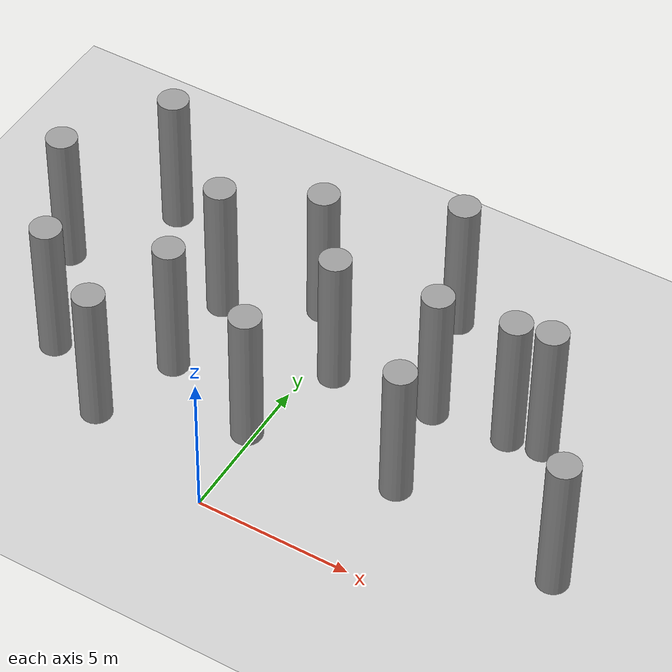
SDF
<sdf version="1.6">
 <world name="default">
  <model name="ground_plane">
   <static>1</static>
   <link name="link">
    <collision name="collision">
     <geometry><plane><normal>0 0 1</normal><size>100 100</size></plane></geometry>
    </collision>
    <visual name="visual">
     <cast_shadows>0</cast_shadows>
     <geometry><plane><normal>0 0 1</normal><size>100 100</size></plane></geometry>
     <material>
      <script><uri>file://media/materials/scripts/gazebo.material</uri><name>Gazebo/Gray</name></script>
     </material>
    </visual>
   </link>
  </model>
  <model name="unit_cylinder_clone">
   <link name="link">
    <inertial>
     <mass>1000</mass>
     <inertia><ixx>2145.83</ixx><ixy>0</ixy><ixz>0</ixz><iyy>2145.83</iyy><iyz>0</iyz><izz>125</izz></inertia>
    </inertial>
    <visual name="visual">
     <geometry><cylinder><radius>0.5</radius><length>5</length></cylinder></geometry>
     <material>
      <script><name>Gazebo/Grey</name><uri>file://media/materials/scripts/gazebo.material</uri></script>
      <shader type="pixel"><normal_map>__default__</normal_map></shader>
      <ambient>0.3 0.3 0.3 1</ambient>
      <diffuse>0.7 0.7 0.7 1</diffuse>
      <specular>0.01 0.01 0.01 1</specular>
      <emissive>0 0 0 1</emissive>
     </material>
    </visual>
    <collision name="collision">
     <geometry><cylinder><radius>0.5</radius><length>5</length></cylinder></geometry>
     <surface>
      <friction>
       <ode><mu>1</mu><mu2>1</mu2><fdir1>0 0 0</fdir1><slip1>0</slip1><slip2>0</slip2></ode>
       <torsional>
        <coefficient>1</coefficient>
        <patch_radius>0</patch_radius>
        <surface_radius>0</surface_radius>
        <use_patch_radius>1</use_patch_radius>
        <ode><slip>0</slip></ode>
       </torsional>
      </friction>
      <bounce><restitution_coefficient>0</restitution_coefficient><threshold>1e+06</threshold></bounce>
      <contact>
       <collide_without_contact>0</collide_without_contact>
       <collide_without_contact_bitmask>1</collide_without_contact_bitmask>
       <collide_bitmask>1</collide_bitmask>
       <ode>
        <soft_cfm>0</soft_cfm>
        <soft_erp>0.2</soft_erp>
        <kp>1e+13</kp>
        <kd>1</kd>
        <max_vel>0.01</max_vel>
        <min_depth>0</min_depth>
       </ode>
       <bullet>
        <split_impulse>1</split_impulse>
        <split_impulse_penetration_threshold>-0.01</split_impulse_penetration_threshold>
        <soft_cfm>0</soft_cfm>
        <soft_erp>0.2</soft_erp>
        <kp>1e+13</kp>
        <kd>1</kd>
       </bullet>
      </contact>
     </surface>
    </collision>
   </link>
   <static>0</static>
   <pose>-4.57244 1.42475 2.49988 5e-06 -0 -0.008441</pose>
  </model>
  <model name="unit_cylinder_clone_clone_0">
   <link name="link">
    <inertial>
     <mass>1000</mass>
     <inertia><ixx>2145.83</ixx><ixy>0</ixy><ixz>0</ixz><iyy>2145.83</iyy><iyz>0</iyz><izz>125</izz></inertia>
    </inertial>
    <visual name="visual">
     <geometry><cylinder><radius>0.5</radius><length>5</length></cylinder></geometry>
     <material>
      <script><name>Gazebo/Grey</name><uri>file://media/materials/scripts/gazebo.material</uri></script>
      <shader type="pixel"><normal_map>__default__</normal_map></shader>
      <ambient>0.3 0.3 0.3 1</ambient>
      <diffuse>0.7 0.7 0.7 1</diffuse>
      <specular>0.01 0.01 0.01 1</specular>
      <emissive>0 0 0 1</emissive>
     </material>
    </visual>
    <collision name="collision">
     <geometry><cylinder><radius>0.5</radius><length>5</length></cylinder></geometry>
     <surface>
      <friction>
       <ode><mu>1</mu><mu2>1</mu2><fdir1>0 0 0</fdir1><slip1>0</slip1><slip2>0</slip2></ode>
       <torsional>
        <coefficient>1</coefficient>
        <patch_radius>0</patch_radius>
        <surface_radius>0</surface_radius>
        <use_patch_radius>1</use_patch_radius>
        <ode><slip>0</slip></ode>
       </torsional>
      </friction>
      <bounce><restitution_coefficient>0</restitution_coefficient><threshold>1e+06</threshold></bounce>
      <contact>
       <collide_without_contact>0</collide_without_contact>
       <collide_without_contact_bitmask>1</collide_without_contact_bitmask>
       <collide_bitmask>1</collide_bitmask>
       <ode>
        <soft_cfm>0</soft_cfm>
        <soft_erp>0.2</soft_erp>
        <kp>1e+13</kp>
        <kd>1</kd>
        <max_vel>0.01</max_vel>
        <min_depth>0</min_depth>
       </ode>
       <bullet>
        <split_impulse>1</split_impulse>
        <split_impulse_penetration_threshold>-0.01</split_impulse_penetration_threshold>
        <soft_cfm>0</soft_cfm>
        <soft_erp>0.2</soft_erp>
        <kp>1e+13</kp>
        <kd>1</kd>
       </bullet>
      </contact>
     </surface>
    </collision>
   </link>
   <static>0</static>
   <pose>-0.255047 3.03327 2.49988 5e-06 -0 -0.008441</pose>
  </model>
  <model name="unit_cylinder_clone_clone_1">
   <link name="link">
    <inertial>
     <mass>1000</mass>
     <inertia><ixx>2145.83</ixx><ixy>0</ixy><ixz>0</ixz><iyy>2145.83</iyy><iyz>0</iyz><izz>125</izz></inertia>
    </inertial>
    <visual name="visual">
     <geometry><cylinder><radius>0.5</radius><length>5</length></cylinder></geometry>
     <material>
      <script><name>Gazebo/Grey</name><uri>file://media/materials/scripts/gazebo.material</uri></script>
      <shader type="pixel"><normal_map>__default__</normal_map></shader>
      <ambient>0.3 0.3 0.3 1</ambient>
      <diffuse>0.7 0.7 0.7 1</diffuse>
      <specular>0.01 0.01 0.01 1</specular>
      <emissive>0 0 0 1</emissive>
     </material>
    </visual>
    <collision name="collision">
     <geometry><cylinder><radius>0.5</radius><length>5</length></cylinder></geometry>
     <surface>
      <friction>
       <ode><mu>1</mu><mu2>1</mu2><fdir1>0 0 0</fdir1><slip1>0</slip1><slip2>0</slip2></ode>
       <torsional>
        <coefficient>1</coefficient>
        <patch_radius>0</patch_radius>
        <surface_radius>0</surface_radius>
        <use_patch_radius>1</use_patch_radius>
        <ode><slip>0</slip></ode>
       </torsional>
      </friction>
      <bounce><restitution_coefficient>0</restitution_coefficient><threshold>1e+06</threshold></bounce>
      <contact>
       <collide_without_contact>0</collide_without_contact>
       <collide_without_contact_bitmask>1</collide_without_contact_bitmask>
       <collide_bitmask>1</collide_bitmask>
       <ode>
        <soft_cfm>0</soft_cfm>
        <soft_erp>0.2</soft_erp>
        <kp>1e+13</kp>
        <kd>1</kd>
        <max_vel>0.01</max_vel>
        <min_depth>0</min_depth>
       </ode>
       <bullet>
        <split_impulse>1</split_impulse>
        <split_impulse_penetration_threshold>-0.01</split_impulse_penetration_threshold>
        <soft_cfm>0</soft_cfm>
        <soft_erp>0.2</soft_erp>
        <kp>1e+13</kp>
        <kd>1</kd>
       </bullet>
      </contact>
     </surface>
    </collision>
   </link>
   <static>0</static>
   <pose>-3.65043 4.24781 2.49988 5e-06 -0 -0.008441</pose>
  </model>
  <model name="unit_cylinder_clone_clone_2">
   <link name="link">
    <inertial>
     <mass>1000</mass>
     <inertia><ixx>2145.83</ixx><ixy>0</ixy><ixz>0</ixz><iyy>2145.83</iyy><iyz>0</iyz><izz>125</izz></inertia>
    </inertial>
    <visual name="visual">
     <geometry><cylinder><radius>0.5</radius><length>5</length></cylinder></geometry>
     <material>
      <script><name>Gazebo/Grey</name><uri>file://media/materials/scripts/gazebo.material</uri></script>
      <shader type="pixel"><normal_map>__default__</normal_map></shader>
      <ambient>0.3 0.3 0.3 1</ambient>
      <diffuse>0.7 0.7 0.7 1</diffuse>
      <specular>0.01 0.01 0.01 1</specular>
      <emissive>0 0 0 1</emissive>
     </material>
    </visual>
    <collision name="collision">
     <geometry><cylinder><radius>0.5</radius><length>5</length></cylinder></geometry>
     <surface>
      <friction>
       <ode><mu>1</mu><mu2>1</mu2><fdir1>0 0 0</fdir1><slip1>0</slip1><slip2>0</slip2></ode>
       <torsional>
        <coefficient>1</coefficient>
        <patch_radius>0</patch_radius>
        <surface_radius>0</surface_radius>
        <use_patch_radius>1</use_patch_radius>
        <ode><slip>0</slip></ode>
       </torsional>
      </friction>
      <bounce><restitution_coefficient>0</restitution_coefficient><threshold>1e+06</threshold></bounce>
      <contact>
       <collide_without_contact>0</collide_without_contact>
       <collide_without_contact_bitmask>1</collide_without_contact_bitmask>
       <collide_bitmask>1</collide_bitmask>
       <ode>
        <soft_cfm>0</soft_cfm>
        <soft_erp>0.2</soft_erp>
        <kp>1e+13</kp>
        <kd>1</kd>
        <max_vel>0.01</max_vel>
        <min_depth>0</min_depth>
       </ode>
       <bullet>
        <split_impulse>1</split_impulse>
        <split_impulse_penetration_threshold>-0.01</split_impulse_penetration_threshold>
        <soft_cfm>0</soft_cfm>
        <soft_erp>0.2</soft_erp>
        <kp>1e+13</kp>
        <kd>1</kd>
       </bullet>
      </contact>
     </surface>
    </collision>
   </link>
   <static>0</static>
   <pose>-7.20726 3.07802 2.49988 5e-06 -0 -0.008441</pose>
  </model>
  <model name="unit_cylinder_clone_clone_4">
   <link name="link">
    <inertial>
     <mass>1000</mass>
     <inertia><ixx>2145.83</ixx><ixy>0</ixy><ixz>0</ixz><iyy>2145.83</iyy><iyz>0</iyz><izz>125</izz></inertia>
    </inertial>
    <visual name="visual">
     <geometry><cylinder><radius>0.5</radius><length>5</length></cylinder></geometry>
     <material>
      <script><name>Gazebo/Grey</name><uri>file://media/materials/scripts/gazebo.material</uri></script>
      <shader type="pixel"><normal_map>__default__</normal_map></shader>
      <ambient>0.3 0.3 0.3 1</ambient>
      <diffuse>0.7 0.7 0.7 1</diffuse>
      <specular>0.01 0.01 0.01 1</specular>
      <emissive>0 0 0 1</emissive>
     </material>
    </visual>
    <collision name="collision">
     <geometry><cylinder><radius>0.5</radius><length>5</length></cylinder></geometry>
     <surface>
      <friction>
       <ode><mu>1</mu><mu2>1</mu2><fdir1>0 0 0</fdir1><slip1>0</slip1><slip2>0</slip2></ode>
       <torsional>
        <coefficient>1</coefficient>
        <patch_radius>0</patch_radius>
        <surface_radius>0</surface_radius>
        <use_patch_radius>1</use_patch_radius>
        <ode><slip>0</slip></ode>
       </torsional>
      </friction>
      <bounce><restitution_coefficient>0</restitution_coefficient><threshold>1e+06</threshold></bounce>
      <contact>
       <collide_without_contact>0</collide_without_contact>
       <collide_without_contact_bitmask>1</collide_without_contact_bitmask>
       <collide_bitmask>1</collide_bitmask>
       <ode>
        <soft_cfm>0</soft_cfm>
        <soft_erp>0.2</soft_erp>
        <kp>1e+13</kp>
        <kd>1</kd>
        <max_vel>0.01</max_vel>
        <min_depth>0</min_depth>
       </ode>
       <bullet>
        <split_impulse>1</split_impulse>
        <split_impulse_penetration_threshold>-0.01</split_impulse_penetration_threshold>
        <soft_cfm>0</soft_cfm>
        <soft_erp>0.2</soft_erp>
        <kp>1e+13</kp>
        <kd>1</kd>
       </bullet>
      </contact>
     </surface>
    </collision>
   </link>
   <static>0</static>
   <pose>4.62068 3.45244 2.49988 5e-06 -0 -0.008441</pose>
  </model>
  <model name="unit_cylinder_clone_clone_5">
   <link name="link">
    <inertial>
     <mass>1000</mass>
     <inertia><ixx>2145.83</ixx><ixy>0</ixy><ixz>0</ixz><iyy>2145.83</iyy><iyz>0</iyz><izz>125</izz></inertia>
    </inertial>
    <visual name="visual">
     <geometry><cylinder><radius>0.5</radius><length>5</length></cylinder></geometry>
     <material>
      <script><name>Gazebo/Grey</name><uri>file://media/materials/scripts/gazebo.material</uri></script>
      <shader type="pixel"><normal_map>__default__</normal_map></shader>
      <ambient>0.3 0.3 0.3 1</ambient>
      <diffuse>0.7 0.7 0.7 1</diffuse>
      <specular>0.01 0.01 0.01 1</specular>
      <emissive>0 0 0 1</emissive>
     </material>
    </visual>
    <collision name="collision">
     <geometry><cylinder><radius>0.5</radius><length>5</length></cylinder></geometry>
     <surface>
      <friction>
       <ode><mu>1</mu><mu2>1</mu2><fdir1>0 0 0</fdir1><slip1>0</slip1><slip2>0</slip2></ode>
       <torsional>
        <coefficient>1</coefficient>
        <patch_radius>0</patch_radius>
        <surface_radius>0</surface_radius>
        <use_patch_radius>1</use_patch_radius>
        <ode><slip>0</slip></ode>
       </torsional>
      </friction>
      <bounce><restitution_coefficient>0</restitution_coefficient><threshold>1e+06</threshold></bounce>
      <contact>
       <collide_without_contact>0</collide_without_contact>
       <collide_without_contact_bitmask>1</collide_without_contact_bitmask>
       <collide_bitmask>1</collide_bitmask>
       <ode>
        <soft_cfm>0</soft_cfm>
        <soft_erp>0.2</soft_erp>
        <kp>1e+13</kp>
        <kd>1</kd>
        <max_vel>0.01</max_vel>
        <min_depth>0</min_depth>
       </ode>
       <bullet>
        <split_impulse>1</split_impulse>
        <split_impulse_penetration_threshold>-0.01</split_impulse_penetration_threshold>
        <soft_cfm>0</soft_cfm>
        <soft_erp>0.2</soft_erp>
        <kp>1e+13</kp>
        <kd>1</kd>
       </bullet>
      </contact>
     </surface>
    </collision>
   </link>
   <static>0</static>
   <pose>0.771854 6.36468 2.49988 5e-06 -0 -0.008441</pose>
  </model>
  <model name="unit_cylinder_clone_clone_6">
   <link name="link">
    <inertial>
     <mass>1000</mass>
     <inertia><ixx>2145.83</ixx><ixy>0</ixy><ixz>0</ixz><iyy>2145.83</iyy><iyz>0</iyz><izz>125</izz></inertia>
    </inertial>
    <visual name="visual">
     <geometry><cylinder><radius>0.5</radius><length>5</length></cylinder></geometry>
     <material>
      <script><name>Gazebo/Grey</name><uri>file://media/materials/scripts/gazebo.material</uri></script>
      <shader type="pixel"><normal_map>__default__</normal_map></shader>
      <ambient>0.3 0.3 0.3 1</ambient>
      <diffuse>0.7 0.7 0.7 1</diffuse>
      <specular>0.01 0.01 0.01 1</specular>
      <emissive>0 0 0 1</emissive>
     </material>
    </visual>
    <collision name="collision">
     <geometry><cylinder><radius>0.5</radius><length>5</length></cylinder></geometry>
     <surface>
      <friction>
       <ode><mu>1</mu><mu2>1</mu2><fdir1>0 0 0</fdir1><slip1>0</slip1><slip2>0</slip2></ode>
       <torsional>
        <coefficient>1</coefficient>
        <patch_radius>0</patch_radius>
        <surface_radius>0</surface_radius>
        <use_patch_radius>1</use_patch_radius>
        <ode><slip>0</slip></ode>
       </torsional>
      </friction>
      <bounce><restitution_coefficient>0</restitution_coefficient><threshold>1e+06</threshold></bounce>
      <contact>
       <collide_without_contact>0</collide_without_contact>
       <collide_without_contact_bitmask>1</collide_without_contact_bitmask>
       <collide_bitmask>1</collide_bitmask>
       <ode>
        <soft_cfm>0</soft_cfm>
        <soft_erp>0.2</soft_erp>
        <kp>1e+13</kp>
        <kd>1</kd>
        <max_vel>0.01</max_vel>
        <min_depth>0</min_depth>
       </ode>
       <bullet>
        <split_impulse>1</split_impulse>
        <split_impulse_penetration_threshold>-0.01</split_impulse_penetration_threshold>
        <soft_cfm>0</soft_cfm>
        <soft_erp>0.2</soft_erp>
        <kp>1e+13</kp>
        <kd>1</kd>
       </bullet>
      </contact>
     </surface>
    </collision>
   </link>
   <static>0</static>
   <pose>-3.7197 7.16167 2.49988 5e-06 -0 -0.008441</pose>
  </model>
  <model name="unit_cylinder_clone_clone_7">
   <link name="link">
    <inertial>
     <mass>1000</mass>
     <inertia><ixx>2145.83</ixx><ixy>0</ixy><ixz>0</ixz><iyy>2145.83</iyy><iyz>0</iyz><izz>125</izz></inertia>
    </inertial>
    <visual name="visual">
     <geometry><cylinder><radius>0.5</radius><length>5</length></cylinder></geometry>
     <material>
      <script><name>Gazebo/Grey</name><uri>file://media/materials/scripts/gazebo.material</uri></script>
      <shader type="pixel"><normal_map>__default__</normal_map></shader>
      <ambient>0.3 0.3 0.3 1</ambient>
      <diffuse>0.7 0.7 0.7 1</diffuse>
      <specular>0.01 0.01 0.01 1</specular>
      <emissive>0 0 0 1</emissive>
     </material>
    </visual>
    <collision name="collision">
     <geometry><cylinder><radius>0.5</radius><length>5</length></cylinder></geometry>
     <surface>
      <friction>
       <ode><mu>1</mu><mu2>1</mu2><fdir1>0 0 0</fdir1><slip1>0</slip1><slip2>0</slip2></ode>
       <torsional>
        <coefficient>1</coefficient>
        <patch_radius>0</patch_radius>
        <surface_radius>0</surface_radius>
        <use_patch_radius>1</use_patch_radius>
        <ode><slip>0</slip></ode>
       </torsional>
      </friction>
      <bounce><restitution_coefficient>0</restitution_coefficient><threshold>1e+06</threshold></bounce>
      <contact>
       <collide_without_contact>0</collide_without_contact>
       <collide_without_contact_bitmask>1</collide_without_contact_bitmask>
       <collide_bitmask>1</collide_bitmask>
       <ode>
        <soft_cfm>0</soft_cfm>
        <soft_erp>0.2</soft_erp>
        <kp>1e+13</kp>
        <kd>1</kd>
        <max_vel>0.01</max_vel>
        <min_depth>0</min_depth>
       </ode>
       <bullet>
        <split_impulse>1</split_impulse>
        <split_impulse_penetration_threshold>-0.01</split_impulse_penetration_threshold>
        <soft_cfm>0</soft_cfm>
        <soft_erp>0.2</soft_erp>
        <kp>1e+13</kp>
        <kd>1</kd>
       </bullet>
      </contact>
     </surface>
    </collision>
   </link>
   <static>0</static>
   <pose>-7.07618 9.7898 2.49988 5e-06 -0 -0.008441</pose>
  </model>
  <model name="unit_cylinder_clone_clone_8">
   <link name="link">
    <inertial>
     <mass>1000</mass>
     <inertia><ixx>2145.83</ixx><ixy>0</ixy><ixz>0</ixz><iyy>2145.83</iyy><iyz>0</iyz><izz>125</izz></inertia>
    </inertial>
    <visual name="visual">
     <geometry><cylinder><radius>0.5</radius><length>5</length></cylinder></geometry>
     <material>
      <script><name>Gazebo/Grey</name><uri>file://media/materials/scripts/gazebo.material</uri></script>
      <shader type="pixel"><normal_map>__default__</normal_map></shader>
      <ambient>0.3 0.3 0.3 1</ambient>
      <diffuse>0.7 0.7 0.7 1</diffuse>
      <specular>0.01 0.01 0.01 1</specular>
      <emissive>0 0 0 1</emissive>
     </material>
    </visual>
    <collision name="collision">
     <geometry><cylinder><radius>0.5</radius><length>5</length></cylinder></geometry>
     <surface>
      <friction>
       <ode><mu>1</mu><mu2>1</mu2><fdir1>0 0 0</fdir1><slip1>0</slip1><slip2>0</slip2></ode>
       <torsional>
        <coefficient>1</coefficient>
        <patch_radius>0</patch_radius>
        <surface_radius>0</surface_radius>
        <use_patch_radius>1</use_patch_radius>
        <ode><slip>0</slip></ode>
       </torsional>
      </friction>
      <bounce><restitution_coefficient>0</restitution_coefficient><threshold>1e+06</threshold></bounce>
      <contact>
       <collide_without_contact>0</collide_without_contact>
       <collide_without_contact_bitmask>1</collide_without_contact_bitmask>
       <collide_bitmask>1</collide_bitmask>
       <ode>
        <soft_cfm>0</soft_cfm>
        <soft_erp>0.2</soft_erp>
        <kp>1e+13</kp>
        <kd>1</kd>
        <max_vel>0.01</max_vel>
        <min_depth>0</min_depth>
       </ode>
       <bullet>
        <split_impulse>1</split_impulse>
        <split_impulse_penetration_threshold>-0.01</split_impulse_penetration_threshold>
        <soft_cfm>0</soft_cfm>
        <soft_erp>0.2</soft_erp>
        <kp>1e+13</kp>
        <kd>1</kd>
       </bullet>
      </contact>
     </surface>
    </collision>
   </link>
   <static>0</static>
   <pose>-9.03278 6.56541 2.49988 5e-06 -0 -0.008441</pose>
  </model>
  <model name="unit_cylinder_clone_clone_9">
   <link name="link">
    <inertial>
     <mass>1000</mass>
     <inertia><ixx>2145.83</ixx><ixy>0</ixy><ixz>0</ixz><iyy>2145.83</iyy><iyz>0</iyz><izz>125</izz></inertia>
    </inertial>
    <visual name="visual">
     <geometry><cylinder><radius>0.5</radius><length>5</length></cylinder></geometry>
     <material>
      <script><name>Gazebo/Grey</name><uri>file://media/materials/scripts/gazebo.material</uri></script>
      <shader type="pixel"><normal_map>__default__</normal_map></shader>
      <ambient>0.3 0.3 0.3 1</ambient>
      <diffuse>0.7 0.7 0.7 1</diffuse>
      <specular>0.01 0.01 0.01 1</specular>
      <emissive>0 0 0 1</emissive>
     </material>
    </visual>
    <collision name="collision">
     <geometry><cylinder><radius>0.5</radius><length>5</length></cylinder></geometry>
     <surface>
      <friction>
       <ode><mu>1</mu><mu2>1</mu2><fdir1>0 0 0</fdir1><slip1>0</slip1><slip2>0</slip2></ode>
       <torsional>
        <coefficient>1</coefficient>
        <patch_radius>0</patch_radius>
        <surface_radius>0</surface_radius>
        <use_patch_radius>1</use_patch_radius>
        <ode><slip>0</slip></ode>
       </torsional>
      </friction>
      <bounce><restitution_coefficient>0</restitution_coefficient><threshold>1e+06</threshold></bounce>
      <contact>
       <collide_without_contact>0</collide_without_contact>
       <collide_without_contact_bitmask>1</collide_without_contact_bitmask>
       <collide_bitmask>1</collide_bitmask>
       <ode>
        <soft_cfm>0</soft_cfm>
        <soft_erp>0.2</soft_erp>
        <kp>1e+13</kp>
        <kd>1</kd>
        <max_vel>0.01</max_vel>
        <min_depth>0</min_depth>
       </ode>
       <bullet>
        <split_impulse>1</split_impulse>
        <split_impulse_penetration_threshold>-0.01</split_impulse_penetration_threshold>
        <soft_cfm>0</soft_cfm>
        <soft_erp>0.2</soft_erp>
        <kp>1e+13</kp>
        <kd>1</kd>
       </bullet>
      </contact>
     </surface>
    </collision>
   </link>
   <static>0</static>
   <pose>-0.932385 8.56668 2.49988 5e-06 -0 -0.008441</pose>
  </model>
  <model name="unit_cylinder_clone_clone_10">
   <link name="link">
    <inertial>
     <mass>1000</mass>
     <inertia><ixx>2145.83</ixx><ixy>0</ixy><ixz>0</ixz><iyy>2145.83</iyy><iyz>0</iyz><izz>125</izz></inertia>
    </inertial>
    <visual name="visual">
     <geometry><cylinder><radius>0.5</radius><length>5</length></cylinder></geometry>
     <material>
      <script><name>Gazebo/Grey</name><uri>file://media/materials/scripts/gazebo.material</uri></script>
      <shader type="pixel"><normal_map>__default__</normal_map></shader>
      <ambient>0.3 0.3 0.3 1</ambient>
      <diffuse>0.7 0.7 0.7 1</diffuse>
      <specular>0.01 0.01 0.01 1</specular>
      <emissive>0 0 0 1</emissive>
     </material>
    </visual>
    <collision name="collision">
     <geometry><cylinder><radius>0.5</radius><length>5</length></cylinder></geometry>
     <surface>
      <friction>
       <ode><mu>1</mu><mu2>1</mu2><fdir1>0 0 0</fdir1><slip1>0</slip1><slip2>0</slip2></ode>
       <torsional>
        <coefficient>1</coefficient>
        <patch_radius>0</patch_radius>
        <surface_radius>0</surface_radius>
        <use_patch_radius>1</use_patch_radius>
        <ode><slip>0</slip></ode>
       </torsional>
      </friction>
      <bounce><restitution_coefficient>0</restitution_coefficient><threshold>1e+06</threshold></bounce>
      <contact>
       <collide_without_contact>0</collide_without_contact>
       <collide_without_contact_bitmask>1</collide_without_contact_bitmask>
       <collide_bitmask>1</collide_bitmask>
       <ode>
        <soft_cfm>0</soft_cfm>
        <soft_erp>0.2</soft_erp>
        <kp>1e+13</kp>
        <kd>1</kd>
        <max_vel>0.01</max_vel>
        <min_depth>0</min_depth>
       </ode>
       <bullet>
        <split_impulse>1</split_impulse>
        <split_impulse_penetration_threshold>-0.01</split_impulse_penetration_threshold>
        <soft_cfm>0</soft_cfm>
        <soft_erp>0.2</soft_erp>
        <kp>1e+13</kp>
        <kd>1</kd>
       </bullet>
      </contact>
     </surface>
    </collision>
   </link>
   <static>0</static>
   <pose>2.90683 10.2854 2.49988 5e-06 -0 -0.008441</pose>
  </model>
  <model name="unit_cylinder_clone_clone_11">
   <link name="link">
    <inertial>
     <mass>1000</mass>
     <inertia><ixx>2145.83</ixx><ixy>0</ixy><ixz>0</ixz><iyy>2145.83</iyy><iyz>0</iyz><izz>125</izz></inertia>
    </inertial>
    <visual name="visual">
     <geometry><cylinder><radius>0.5</radius><length>5</length></cylinder></geometry>
     <material>
      <script><name>Gazebo/Grey</name><uri>file://media/materials/scripts/gazebo.material</uri></script>
      <shader type="pixel"><normal_map>__default__</normal_map></shader>
      <ambient>0.3 0.3 0.3 1</ambient>
      <diffuse>0.7 0.7 0.7 1</diffuse>
      <specular>0.01 0.01 0.01 1</specular>
      <emissive>0 0 0 1</emissive>
     </material>
    </visual>
    <collision name="collision">
     <geometry><cylinder><radius>0.5</radius><length>5</length></cylinder></geometry>
     <surface>
      <friction>
       <ode><mu>1</mu><mu2>1</mu2><fdir1>0 0 0</fdir1><slip1>0</slip1><slip2>0</slip2></ode>
       <torsional>
        <coefficient>1</coefficient>
        <patch_radius>0</patch_radius>
        <surface_radius>0</surface_radius>
        <use_patch_radius>1</use_patch_radius>
        <ode><slip>0</slip></ode>
       </torsional>
      </friction>
      <bounce><restitution_coefficient>0</restitution_coefficient><threshold>1e+06</threshold></bounce>
      <contact>
       <collide_without_contact>0</collide_without_contact>
       <collide_without_contact_bitmask>1</collide_without_contact_bitmask>
       <collide_bitmask>1</collide_bitmask>
       <ode>
        <soft_cfm>0</soft_cfm>
        <soft_erp>0.2</soft_erp>
        <kp>1e+13</kp>
        <kd>1</kd>
        <max_vel>0.01</max_vel>
        <min_depth>0</min_depth>
       </ode>
       <bullet>
        <split_impulse>1</split_impulse>
        <split_impulse_penetration_threshold>-0.01</split_impulse_penetration_threshold>
        <soft_cfm>0</soft_cfm>
        <soft_erp>0.2</soft_erp>
        <kp>1e+13</kp>
        <kd>1</kd>
       </bullet>
      </contact>
     </surface>
    </collision>
   </link>
   <static>0</static>
   <pose>6.49678 6.84085 2.49988 5e-06 -0 -0.008441</pose>
  </model>
  <model name="unit_cylinder_clone_clone_12">
   <link name="link">
    <inertial>
     <mass>1000</mass>
     <inertia><ixx>2145.83</ixx><ixy>0</ixy><ixz>0</ixz><iyy>2145.83</iyy><iyz>0</iyz><izz>125</izz></inertia>
    </inertial>
    <visual name="visual">
     <geometry><cylinder><radius>0.5</radius><length>5</length></cylinder></geometry>
     <material>
      <script><name>Gazebo/Grey</name><uri>file://media/materials/scripts/gazebo.material</uri></script>
      <shader type="pixel"><normal_map>__default__</normal_map></shader>
      <ambient>0.3 0.3 0.3 1</ambient>
      <diffuse>0.7 0.7 0.7 1</diffuse>
      <specular>0.01 0.01 0.01 1</specular>
      <emissive>0 0 0 1</emissive>
     </material>
    </visual>
    <collision name="collision">
     <geometry><cylinder><radius>0.5</radius><length>5</length></cylinder></geometry>
     <surface>
      <friction>
       <ode><mu>1</mu><mu2>1</mu2><fdir1>0 0 0</fdir1><slip1>0</slip1><slip2>0</slip2></ode>
       <torsional>
        <coefficient>1</coefficient>
        <patch_radius>0</patch_radius>
        <surface_radius>0</surface_radius>
        <use_patch_radius>1</use_patch_radius>
        <ode><slip>0</slip></ode>
       </torsional>
      </friction>
      <bounce><restitution_coefficient>0</restitution_coefficient><threshold>1e+06</threshold></bounce>
      <contact>
       <collide_without_contact>0</collide_without_contact>
       <collide_without_contact_bitmask>1</collide_without_contact_bitmask>
       <collide_bitmask>1</collide_bitmask>
       <ode>
        <soft_cfm>0</soft_cfm>
        <soft_erp>0.2</soft_erp>
        <kp>1e+13</kp>
        <kd>1</kd>
        <max_vel>0.01</max_vel>
        <min_depth>0</min_depth>
       </ode>
       <bullet>
        <split_impulse>1</split_impulse>
        <split_impulse_penetration_threshold>-0.01</split_impulse_penetration_threshold>
        <soft_cfm>0</soft_cfm>
        <soft_erp>0.2</soft_erp>
        <kp>1e+13</kp>
        <kd>1</kd>
       </bullet>
      </contact>
     </surface>
    </collision>
   </link>
   <static>0</static>
   <pose>4.06759 6.61343 2.49988 5e-06 -0 -0.008441</pose>
  </model>
  <model name="unit_cylinder_clone_clone_13">
   <link name="link">
    <inertial>
     <mass>1000</mass>
     <inertia><ixx>2145.83</ixx><ixy>0</ixy><ixz>0</ixz><iyy>2145.83</iyy><iyz>0</iyz><izz>125</izz></inertia>
    </inertial>
    <visual name="visual">
     <geometry><cylinder><radius>0.5</radius><length>5</length></cylinder></geometry>
     <material>
      <script><name>Gazebo/Grey</name><uri>file://media/materials/scripts/gazebo.material</uri></script>
      <shader type="pixel"><normal_map>__default__</normal_map></shader>
      <ambient>0.3 0.3 0.3 1</ambient>
      <diffuse>0.7 0.7 0.7 1</diffuse>
      <specular>0.01 0.01 0.01 1</specular>
      <emissive>0 0 0 1</emissive>
     </material>
    </visual>
    <collision name="collision">
     <geometry><cylinder><radius>0.5</radius><length>5</length></cylinder></geometry>
     <surface>
      <friction>
       <ode><mu>1</mu><mu2>1</mu2><fdir1>0 0 0</fdir1><slip1>0</slip1><slip2>0</slip2></ode>
       <torsional>
        <coefficient>1</coefficient>
        <patch_radius>0</patch_radius>
        <surface_radius>0</surface_radius>
        <use_patch_radius>1</use_patch_radius>
        <ode><slip>0</slip></ode>
       </torsional>
      </friction>
      <bounce><restitution_coefficient>0</restitution_coefficient><threshold>1e+06</threshold></bounce>
      <contact>
       <collide_without_contact>0</collide_without_contact>
       <collide_without_contact_bitmask>1</collide_without_contact_bitmask>
       <collide_bitmask>1</collide_bitmask>
       <ode>
        <soft_cfm>0</soft_cfm>
        <soft_erp>0.2</soft_erp>
        <kp>1e+13</kp>
        <kd>1</kd>
        <max_vel>0.01</max_vel>
        <min_depth>0</min_depth>
       </ode>
       <bullet>
        <split_impulse>1</split_impulse>
        <split_impulse_penetration_threshold>-0.01</split_impulse_penetration_threshold>
        <soft_cfm>0</soft_cfm>
        <soft_erp>0.2</soft_erp>
        <kp>1e+13</kp>
        <kd>1</kd>
       </bullet>
      </contact>
     </surface>
    </collision>
   </link>
   <static>0</static>
   <pose>10.1583 2.76277 2.49988 5e-06 -0 -0.008441</pose>
  </model>
  <model name="unit_cylinder_clone_clone_26">
   <link name="link">
    <inertial>
     <mass>1000</mass>
     <inertia><ixx>2145.83</ixx><ixy>0</ixy><ixz>0</ixz><iyy>2145.83</iyy><iyz>0</iyz><izz>125</izz></inertia>
    </inertial>
    <visual name="visual">
     <geometry><cylinder><radius>0.5</radius><length>5</length></cylinder></geometry>
     <material>
      <script><name>Gazebo/Grey</name><uri>file://media/materials/scripts/gazebo.material</uri></script>
      <shader type="pixel"><normal_map>__default__</normal_map></shader>
      <ambient>0.3 0.3 0.3 1</ambient>
      <diffuse>0.7 0.7 0.7 1</diffuse>
      <specular>0.01 0.01 0.01 1</specular>
      <emissive>0 0 0 1</emissive>
     </material>
    </visual>
    <collision name="collision">
     <geometry><cylinder><radius>0.5</radius><length>5</length></cylinder></geometry>
     <surface>
      <friction>
       <ode><mu>1</mu><mu2>1</mu2><fdir1>0 0 0</fdir1><slip1>0</slip1><slip2>0</slip2></ode>
       <torsional>
        <coefficient>1</coefficient>
        <patch_radius>0</patch_radius>
        <surface_radius>0</surface_radius>
        <use_patch_radius>1</use_patch_radius>
        <ode><slip>0</slip></ode>
       </torsional>
      </friction>
      <bounce><restitution_coefficient>0</restitution_coefficient><threshold>1e+06</threshold></bounce>
      <contact>
       <collide_without_contact>0</collide_without_contact>
       <collide_without_contact_bitmask>1</collide_without_contact_bitmask>
       <collide_bitmask>1</collide_bitmask>
       <ode>
        <soft_cfm>0</soft_cfm>
        <soft_erp>0.2</soft_erp>
        <kp>1e+13</kp>
        <kd>1</kd>
        <max_vel>0.01</max_vel>
        <min_depth>0</min_depth>
       </ode>
       <bullet>
        <split_impulse>1</split_impulse>
        <split_impulse_penetration_threshold>-0.01</split_impulse_penetration_threshold>
        <soft_cfm>0</soft_cfm>
        <soft_erp>0.2</soft_erp>
        <kp>1e+13</kp>
        <kd>1</kd>
       </bullet>
      </contact>
     </surface>
    </collision>
   </link>
   <static>0</static>
   <pose>7.56619 7.02641 2.49988 5e-06 -0 -0.008441</pose>
  </model>
 </world>
</sdf>
